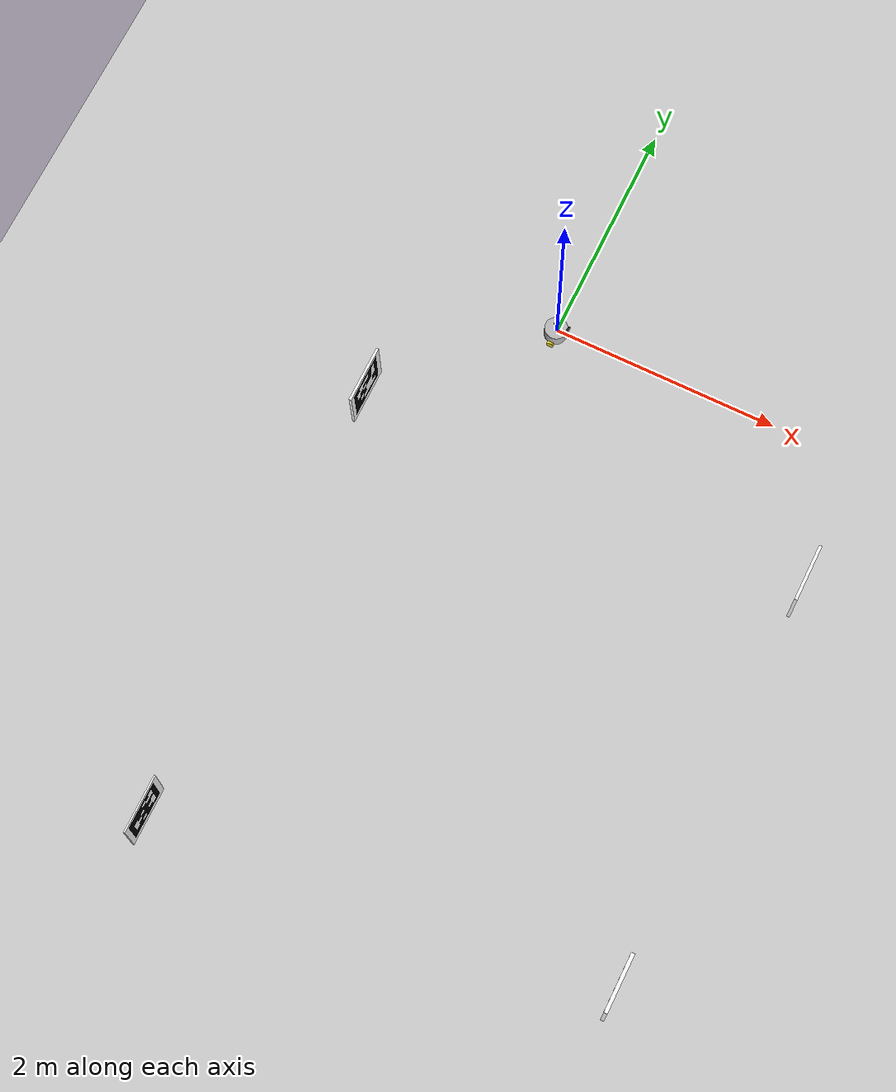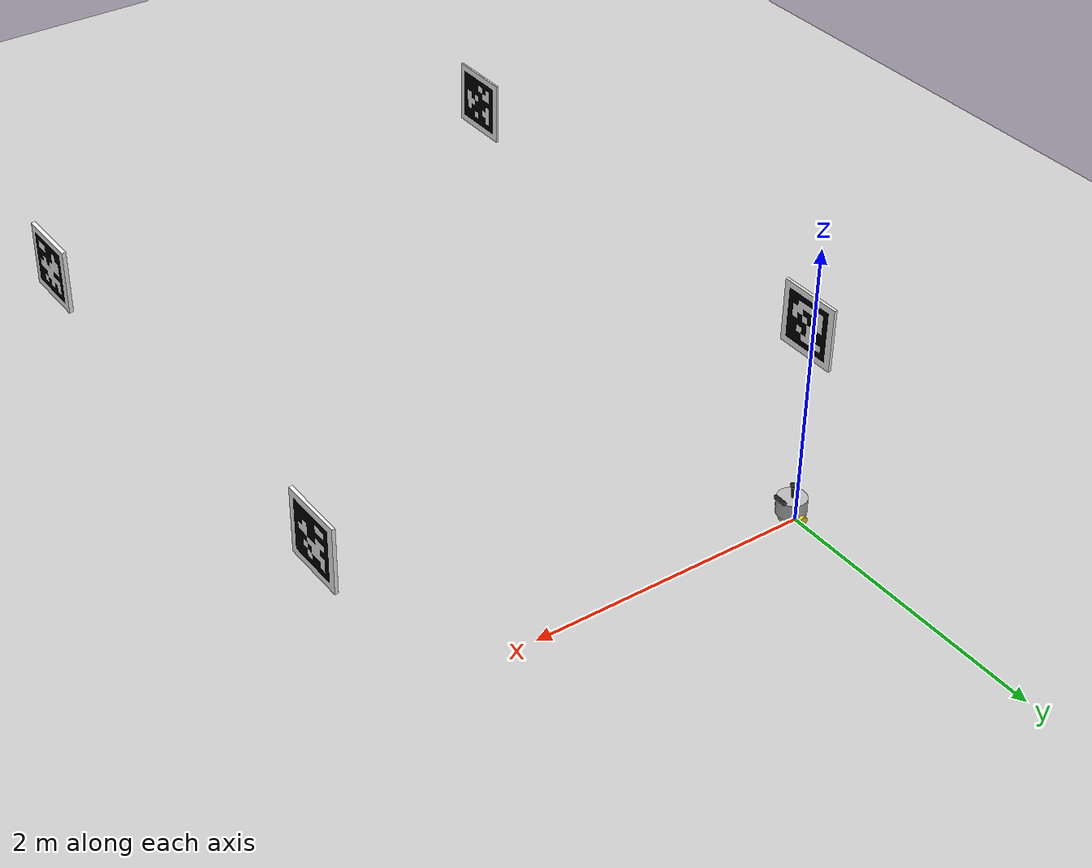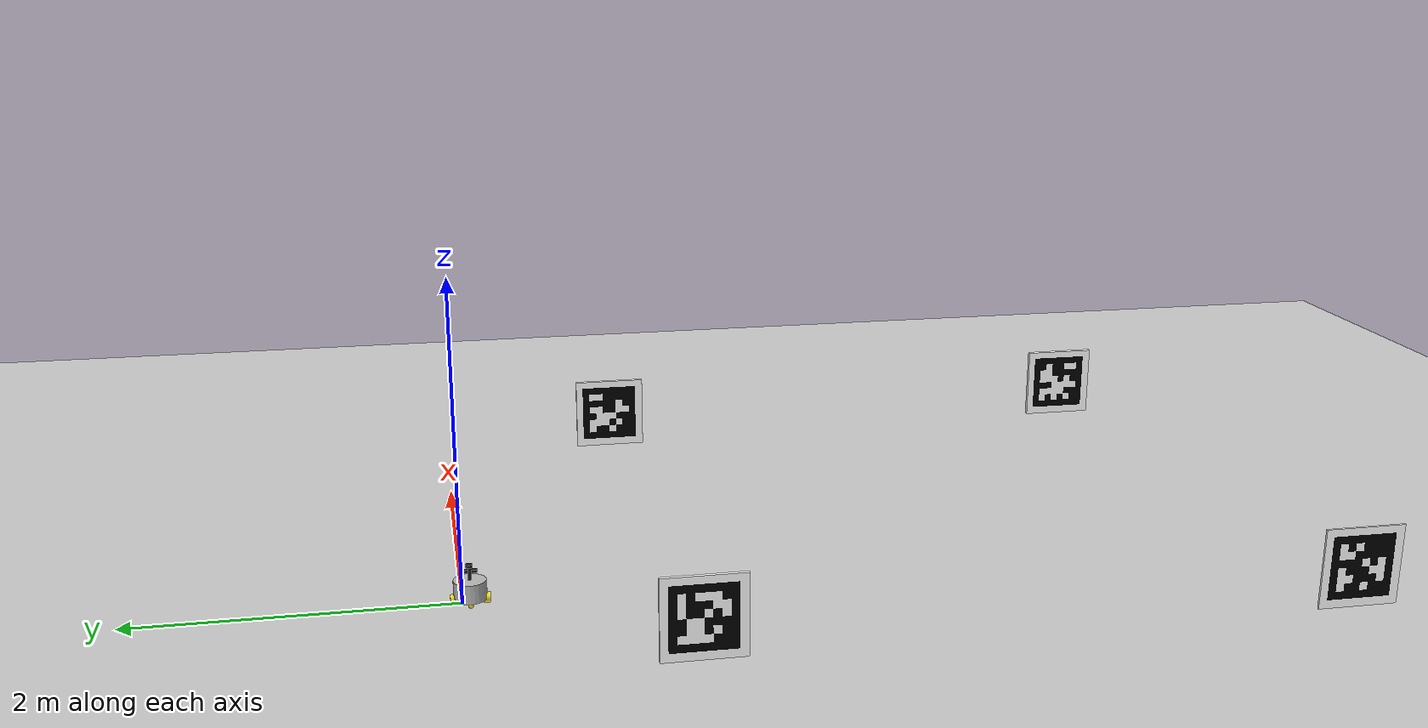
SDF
<sdf version="1.7">
 <world name="default">
  <gravity>0 0 -9.8</gravity>
  <physics name="default_physics" default="0" type="ode">
   <max_step_size>0.001</max_step_size>
   <real_time_factor>1</real_time_factor>
   <real_time_update_rate>1000</real_time_update_rate>
  </physics>
  <model name="ground_plane">
   <static>1</static>
   <link name="link">
    <collision name="collision">
     <geometry><plane><normal>0 0 1</normal><size>100 100</size></plane></geometry>
     <surface><friction><ode><mu>100</mu><mu2>50</mu2></ode></friction></surface>
    </collision>
    <visual name="visual">
     <geometry><plane><normal>0 0 1</normal><size>100 100</size></plane></geometry>
     <material>
      <script><uri>file://media/materials/scripts/gazebo.material</uri><name>Gazebo/Grey</name></script>
     </material>
    </visual>
   </link>
  </model>
  <light name="Warehouse_CeilingLight_003" type="point">
   <pose>0 0 9 0 -0 0</pose>
   <diffuse>0.5 0.5 0.5 1</diffuse>
   <specular>0.2 0.2 0.2 1</specular>
   <attenuation>
    <range>80</range>
    <constant>0.3</constant>
    <linear>0.01</linear>
    <quadratic>0.001</quadratic>
   </attenuation>
   <direction>0.1 0.1 -1</direction>
   <spot><inner_angle>0</inner_angle><outer_angle>0</outer_angle><falloff>0</falloff></spot>
  </light>
  <magnetic_field>6e-06 2.3e-05 -4.2e-05</magnetic_field>
  <atmosphere type="adiabatic"/>
  <scene><ambient>0.4 0.4 0.4 1</ambient><background>0.7 0.7 0.7 1</background><shadows>1</shadows></scene>
  <audio><device>default</device></audio>
  <spherical_coordinates>
   <surface_model>EARTH_WGS84</surface_model>
   <latitude_deg>0</latitude_deg>
   <longitude_deg>0</longitude_deg>
   <elevation>0</elevation>
   <heading_deg>0</heading_deg>
  </spherical_coordinates>
  <model name="robot">
   <link name="base_footprint">
    <inertial>
     <pose>0.006849 0 0.097849 0 -0 0</pose>
     <mass>1.46</mass>
     <inertia>
      <ixx>0.00767852</ixx>
      <ixy>0</ixy>
      <ixz>-0.000681507</ixz>
      <iyy>0.00981003</iyy>
      <iyz>0</iyz>
      <izz>0.00733432</izz>
     </inertia>
    </inertial>
    <collision name="base_footprint_fixed_joint_lump__base_link_collision">
     <pose>0 0 0.091 0 -0 0</pose>
     <geometry><cylinder><length>0.12</length><radius>0.1</radius></cylinder></geometry>
    </collision>
    <collision name="base_footprint_fixed_joint_lump__back_caster_link_collision_1">
     <pose>0.08 0 0.015 0 -0 0</pose>
     <geometry><sphere><radius>0.016</radius></sphere></geometry>
     <surface>
      <contact><ode><kp>1e+10</kp><kd>1</kd></ode></contact>
      <friction><ode><mu>0</mu><mu2>0</mu2></ode></friction>
     </surface>
    </collision>
    <collision name="base_footprint_fixed_joint_lump__camera_link_collision_2">
     <pose>0.1 0 0.166 0 -0 0</pose>
     <geometry><box><size>0.02 0.1 0.02</size></box></geometry>
    </collision>
    <collision name="base_footprint_fixed_joint_lump__front_caster_link_collision_3">
     <pose>-0.08 0 0.015 0 -0 0</pose>
     <geometry><sphere><radius>0.016</radius></sphere></geometry>
     <surface>
      <contact><ode><kp>1e+10</kp><kd>1</kd></ode></contact>
      <friction><ode><mu>0</mu><mu2>0</mu2></ode></friction>
     </surface>
    </collision>
    <collision name="base_footprint_fixed_joint_lump__imu_link_collision_4">
     <pose>0 0 0.111 0 -0 0</pose>
     <geometry><box><size>0.02 0.02 0.02</size></box></geometry>
    </collision>
    <collision name="base_footprint_fixed_joint_lump__laser_support_link_collision_5">
     <pose>0 0 0.191 0 -0 0</pose>
     <geometry><cylinder><length>0.1</length><radius>0.01</radius></cylinder></geometry>
    </collision>
    <collision name="base_footprint_fixed_joint_lump__laser_link_collision_6">
     <pose>0 0 0.241 0 -0 0</pose>
     <geometry><cylinder><length>0.02</length><radius>0.02</radius></cylinder></geometry>
    </collision>
    <visual name="base_footprint_fixed_joint_lump__base_link_visual">
     <pose>0 0 0.091 0 -0 0</pose>
     <geometry><cylinder><length>0.12</length><radius>0.1</radius></cylinder></geometry>
    </visual>
    <visual name="base_footprint_fixed_joint_lump__back_caster_link_visual_1">
     <pose>0.08 0 0.015 0 -0 0</pose>
     <geometry><sphere><radius>0.016</radius></sphere></geometry>
     <material>
      <script><name>Gazebo/Yellow</name><uri>file://media/materials/scripts/gazebo.material</uri></script>
     </material>
    </visual>
    <visual name="base_footprint_fixed_joint_lump__camera_link_visual_2">
     <pose>0.1 0 0.166 0 -0 0</pose>
     <geometry><box><size>0.02 0.1 0.02</size></box></geometry>
     <material>
      <script><name>Gazebo/Black</name><uri>file://media/materials/scripts/gazebo.material</uri></script>
     </material>
    </visual>
    <visual name="base_footprint_fixed_joint_lump__front_caster_link_visual_3">
     <pose>-0.08 0 0.015 0 -0 0</pose>
     <geometry><sphere><radius>0.016</radius></sphere></geometry>
     <material>
      <script><name>Gazebo/Yellow</name><uri>file://media/materials/scripts/gazebo.material</uri></script>
     </material>
    </visual>
    <visual name="base_footprint_fixed_joint_lump__imu_link_visual_4">
     <pose>0 0 0.111 0 -0 0</pose>
     <geometry><box><size>0.02 0.02 0.02</size></box></geometry>
    </visual>
    <visual name="base_footprint_fixed_joint_lump__laser_support_link_visual_5">
     <pose>0 0 0.191 0 -0 0</pose>
     <geometry><cylinder><length>0.1</length><radius>0.01</radius></cylinder></geometry>
     <material>
      <script><name>Gazebo/Black</name><uri>file://media/materials/scripts/gazebo.material</uri></script>
     </material>
    </visual>
    <visual name="base_footprint_fixed_joint_lump__laser_link_visual_6">
     <pose>0 0 0.241 0 -0 0</pose>
     <geometry><cylinder><length>0.02</length><radius>0.02</radius></cylinder></geometry>
     <material>
      <script><name>Gazebo/Black</name><uri>file://media/materials/scripts/gazebo.material</uri></script>
     </material>
    </visual>
    <sensor name="camera_sensor" type="depth">
     <plugin name="depth_camera" filename="libgazebo_ros_camera.so">
      <ros><namespace>/camera_sensor</namespace></ros>
      <frame_name>camera_optical_link</frame_name>
      <update_rate>30.0</update_rate>
      <image_topic_name>image_raw</image_topic_name>
      <camera_info_topic_name>camera_info</camera_info_topic_name>
     </plugin>
     <always_on>1</always_on>
     <update_rate>30</update_rate>
     <camera name="camera">
      <horizontal_fov>1.50098</horizontal_fov>
      <image><width>800</width><height>600</height><format>R8G8B8</format></image>
      <distortion><k1>0</k1><k2>0</k2><k3>0</k3><p1>0</p1><p2>0</p2><center>0.5 0.5</center></distortion>
      <clip><near>0.1</near><far>100</far></clip>
     </camera>
     <pose>0.1 0 0.166 0 -0 0</pose>
    </sensor>
    <sensor name="imu_sensor" type="imu">
     <plugin name="imu_plugin" filename="libgazebo_ros_imu_sensor.so">
      <ros><namespace>/</namespace><remapping>~/out:=imu</remapping></ros>
      <initial_orientation_as_reference>0</initial_orientation_as_reference>
     </plugin>
     <update_rate>100</update_rate>
     <always_on>1</always_on>
     <imu>
      <angular_velocity>
       <x>
        <noise type="gaussian">
         <mean>0</mean>
         <stddev>0.0002</stddev>
         <bias_mean>7.5e-06</bias_mean>
         <bias_stddev>8e-07</bias_stddev>
        </noise>
       </x>
       <y>
        <noise type="gaussian">
         <mean>0</mean>
         <stddev>0.0002</stddev>
         <bias_mean>7.5e-06</bias_mean>
         <bias_stddev>8e-07</bias_stddev>
        </noise>
       </y>
       <z>
        <noise type="gaussian">
         <mean>0</mean>
         <stddev>0.0002</stddev>
         <bias_mean>7.5e-06</bias_mean>
         <bias_stddev>8e-07</bias_stddev>
        </noise>
       </z>
      </angular_velocity>
      <linear_acceleration>
       <x>
        <noise type="gaussian">
         <mean>0</mean>
         <stddev>0.017</stddev>
         <bias_mean>0.1</bias_mean>
         <bias_stddev>0.001</bias_stddev>
        </noise>
       </x>
       <y>
        <noise type="gaussian">
         <mean>0</mean>
         <stddev>0.017</stddev>
         <bias_mean>0.1</bias_mean>
         <bias_stddev>0.001</bias_stddev>
        </noise>
       </y>
       <z>
        <noise type="gaussian">
         <mean>0</mean>
         <stddev>0.017</stddev>
         <bias_mean>0.1</bias_mean>
         <bias_stddev>0.001</bias_stddev>
        </noise>
       </z>
      </linear_acceleration>
     </imu>
     <pose>0 0 0.111 0 -0 0</pose>
    </sensor>
    <sensor name="laserscan" type="ray">
     <plugin name="laserscan" filename="libgazebo_ros_ray_sensor.so">
      <ros><namespace>/</namespace><remapping>~/out:=scan</remapping></ros>
      <output_type>sensor_msgs/LaserScan</output_type>
      <frame_name>laser_link</frame_name>
     </plugin>
     <always_on>1</always_on>
     <visualize>0</visualize>
     <update_rate>5</update_rate>
     <ray>
      <scan>
       <horizontal>
        <samples>360</samples>
        <resolution>1</resolution>
        <min_angle>0</min_angle>
        <max_angle>6.28</max_angle>
       </horizontal>
       <vertical><samples>1</samples><min_angle>0</min_angle><max_angle>0</max_angle></vertical>
      </scan>
      <range><min>0.12</min><max>8</max><resolution>0.015</resolution></range>
      <noise><type>gaussian</type><mean>0</mean><stddev>0.01</stddev></noise>
     </ray>
     <pose>0 0 0.241 0 -0 0</pose>
    </sensor>
   </link>
   <joint name="left_wheel_joint" type="revolute">
    <pose relative_to="base_footprint">0 0.1 0.031 0 -0 0</pose>
    <parent>base_footprint</parent>
    <child>left_wheel_link</child>
    <axis>
     <xyz>0 1 0</xyz>
     <limit><lower>-1e+16</lower><upper>1e+16</upper></limit>
     <dynamics><spring_reference>0</spring_reference><spring_stiffness>0</spring_stiffness></dynamics>
    </axis>
   </joint>
   <link name="left_wheel_link">
    <pose relative_to="left_wheel_joint">0 0 0 0 -0 0</pose>
    <inertial>
     <mass>0.2</mass>
     <inertia>
      <ixx>7.78667e-05</ixx>
      <ixy>0</ixy>
      <ixz>0</ixz>
      <iyy>7.78667e-05</iyy>
      <iyz>0</iyz>
      <izz>0.0001024</izz>
     </inertia>
    </inertial>
    <collision name="left_wheel_link_collision">
     <pose>0 0 0 1.57079 -0 0</pose>
     <geometry><cylinder><length>0.04</length><radius>0.032</radius></cylinder></geometry>
     <surface>
      <contact><ode><kp>1e+10</kp><kd>1</kd></ode></contact>
      <friction><ode><mu>20</mu><mu2>20</mu2></ode></friction>
     </surface>
    </collision>
    <visual name="left_wheel_link_visual">
     <pose>0 0 0 1.57079 -0 0</pose>
     <geometry><cylinder><length>0.04</length><radius>0.032</radius></cylinder></geometry>
     <material>
      <script><name>Gazebo/Yellow</name><uri>file://media/materials/scripts/gazebo.material</uri></script>
     </material>
    </visual>
   </link>
   <joint name="right_wheel_joint" type="revolute">
    <pose relative_to="base_footprint">0 -0.1 0.031 0 -0 0</pose>
    <parent>base_footprint</parent>
    <child>right_wheel_link</child>
    <axis>
     <xyz>0 1 0</xyz>
     <limit><lower>-1e+16</lower><upper>1e+16</upper></limit>
     <dynamics><spring_reference>0</spring_reference><spring_stiffness>0</spring_stiffness></dynamics>
    </axis>
   </joint>
   <link name="right_wheel_link">
    <pose relative_to="right_wheel_joint">0 0 0 0 -0 0</pose>
    <inertial>
     <mass>0.2</mass>
     <inertia>
      <ixx>7.78667e-05</ixx>
      <ixy>0</ixy>
      <ixz>0</ixz>
      <iyy>7.78667e-05</iyy>
      <iyz>0</iyz>
      <izz>0.0001024</izz>
     </inertia>
    </inertial>
    <collision name="right_wheel_link_collision">
     <pose>0 0 0 1.57079 -0 0</pose>
     <geometry><cylinder><length>0.04</length><radius>0.032</radius></cylinder></geometry>
     <surface>
      <contact><ode><kp>1e+10</kp><kd>1</kd></ode></contact>
      <friction><ode><mu>20</mu><mu2>20</mu2></ode></friction>
     </surface>
    </collision>
    <visual name="right_wheel_link_visual">
     <pose>0 0 0 1.57079 -0 0</pose>
     <geometry><cylinder><length>0.04</length><radius>0.032</radius></cylinder></geometry>
     <material>
      <script><name>Gazebo/Yellow</name><uri>file://media/materials/scripts/gazebo.material</uri></script>
     </material>
    </visual>
   </link>
   <static>0</static>
   <plugin name="gazebo_ros2_control" filename="libgazebo_ros2_control.so">
    <parameters>/home/agv/Desktop/catkin/catkin_ws/install/bot_description/share/bot_description/config/bot_ros2_controller.yaml</parameters>
    <ros>
     <remapping>/bot_diff_drive_controller/cmd_vel_unstamped:=/cmd_vel</remapping>
     <remapping>/bot_diff_drive_controller/odom:=/odom</remapping>
    </ros>
   </plugin>
   <pose>0.004174 -0.045686 0.001 0 -0 -0.005577</pose>
  </model>
  <model name="apriltag_0">
   <static>1</static>
   <link name="link">
    <visual name="visual">
     <geometry><mesh><uri>model://apriltag_0/meshes/apriltag_0.dae</uri><scale>1 1 1</scale></mesh></geometry>
    </visual>
   </link>
   <pose>2.78191 -1.232 0.289752 0 -1.56873 0</pose>
  </model>
  <light name="user_spot_light_0" type="spot">
   <pose>2.71264 0.506243 1 0 -0 0</pose>
   <diffuse>0.5 0.5 0.5 1</diffuse>
   <specular>0.1 0.1 0.1 1</specular>
   <direction>0 0 -1</direction>
   <attenuation>
    <range>20</range>
    <constant>0.5</constant>
    <linear>0.01</linear>
    <quadratic>0.001</quadratic>
   </attenuation>
   <cast_shadows>0</cast_shadows>
   <spot><inner_angle>0.6</inner_angle><outer_angle>1</outer_angle><falloff>1</falloff></spot>
  </light>
  <model name="apriltag_1">
   <static>1</static>
   <link name="link">
    <visual name="visual">
     <geometry><mesh><uri>model://apriltag_1/meshes/apriltag_1.dae</uri><scale>1 1 1</scale></mesh></geometry>
    </visual>
   </link>
   <pose>2.7886 -4.83957 0.337347 0 -1.56657 0</pose>
  </model>
  <light name="user_spot_light_1" type="spot">
   <pose>2.63367 -3.09478 1 0 -0 0</pose>
   <diffuse>0.5 0.5 0.5 1</diffuse>
   <specular>0.1 0.1 0.1 1</specular>
   <direction>0 0 -1</direction>
   <attenuation>
    <range>20</range>
    <constant>0.5</constant>
    <linear>0.01</linear>
    <quadratic>0.001</quadratic>
   </attenuation>
   <cast_shadows>0</cast_shadows>
   <spot><inner_angle>0.6</inner_angle><outer_angle>1</outer_angle><falloff>1</falloff></spot>
  </light>
  <light name="user_spot_light_2" type="spot">
   <pose>-0.932832 -7.86751 1 0 -0 0</pose>
   <diffuse>0.5 0.5 0.5 1</diffuse>
   <specular>0.1 0.1 0.1 1</specular>
   <direction>0 0 -1</direction>
   <attenuation>
    <range>20</range>
    <constant>0.5</constant>
    <linear>0.01</linear>
    <quadratic>0.001</quadratic>
   </attenuation>
   <cast_shadows>0</cast_shadows>
   <spot><inner_angle>0.6</inner_angle><outer_angle>1</outer_angle><falloff>1</falloff></spot>
  </light>
  <light name="user_spot_light_3" type="spot">
   <pose>-1.60448 1.08918 1 0 -0 0</pose>
   <diffuse>0.5 0.5 0.5 1</diffuse>
   <specular>0.1 0.1 0.1 1</specular>
   <direction>0 0 -1</direction>
   <attenuation>
    <range>20</range>
    <constant>0.5</constant>
    <linear>0.01</linear>
    <quadratic>0.001</quadratic>
   </attenuation>
   <cast_shadows>0</cast_shadows>
   <spot><inner_angle>0.6</inner_angle><outer_angle>1</outer_angle><falloff>1</falloff></spot>
  </light>
  <model name="apriltag_2">
   <static>1</static>
   <link name="link">
    <visual name="visual">
     <geometry><mesh><uri>model://apriltag_2/meshes/apriltag_2.dae</uri><scale>1 1 1</scale></mesh></geometry>
    </visual>
   </link>
   <pose>-1.13363 -5.20752 0.297011 0 1.56917 0</pose>
  </model>
  <model name="apriltag_3">
   <static>1</static>
   <link name="link">
    <visual name="visual">
     <geometry><mesh><uri>model://apriltag_3/meshes/apriltag_3.dae</uri><scale>1 1 1</scale></mesh></geometry>
    </visual>
   </link>
   <pose>-1.17444 -1.26784 0.322428 0 1.56556 0</pose>
  </model>
 </world>
</sdf>
